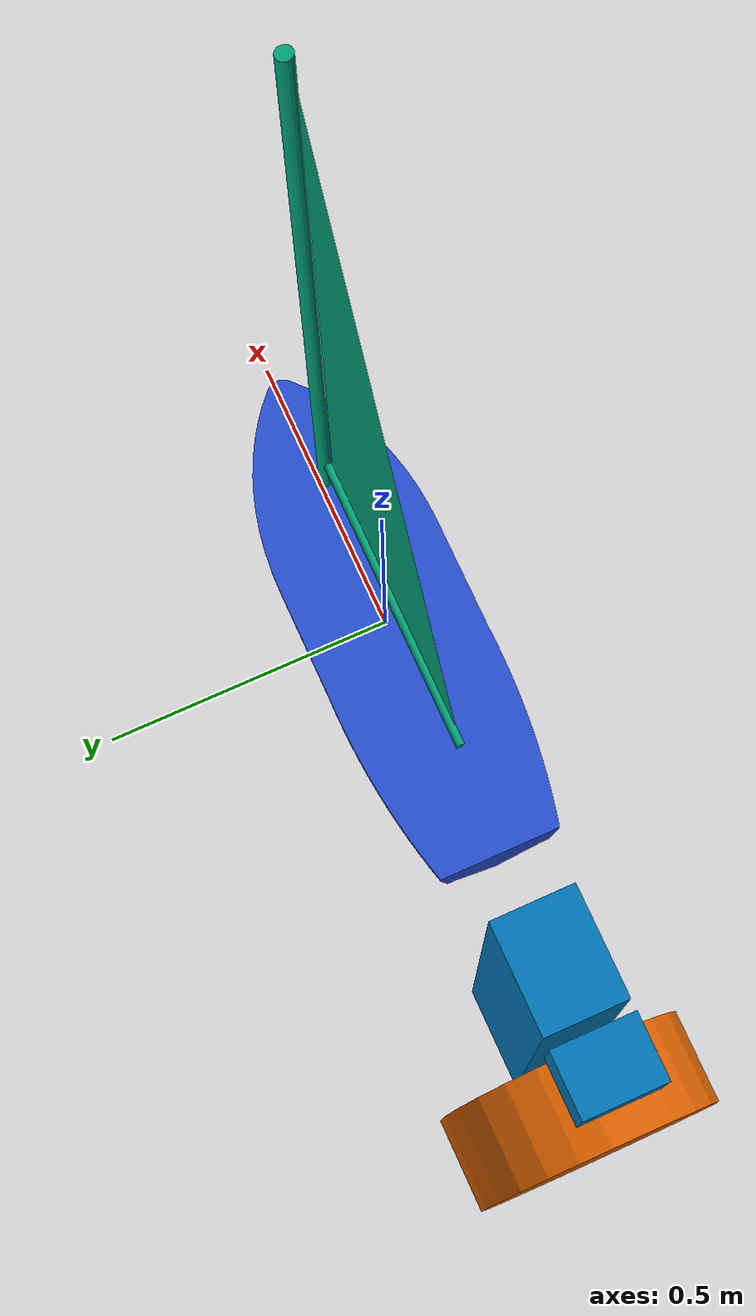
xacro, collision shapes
<?xml version="1.0"?>

<robot name="sailboat" xmlns:xacro="http://www.ros.org/wiki/xacro">

    <xacro:arg name="thruster_namespace" default="thrusters/"/>

    <xacro:property name="PI" value="3.1415926535897931"/>
    <xacro:property name="disp" value="0.0"/>
    <xacro:property name="thruster_namespace" value="$(arg thruster_namespace)" scope="global" />

    <!-- HULL DESCRIPTION -->
    <link name="base_link">
        <visual>
          <origin rpy="0 0 0" xyz="0 0 ${disp}"/>
          <geometry>
            <mesh filename="package://sailboat_description/mesh/pt90.stl"/>
          </geometry>
          <material name="blue"/>
        </visual>

        <collision>
          <origin rpy="0 0 ${disp}"/>
          <geometry>
            <mesh filename="package://sailboat_description/mesh/pt90.stl"/>
          </geometry>
        </collision>

        <inertial>
          <origin rpy="0 0 0" xyz="0 0 0.0"/>
          <mass value="50.0"/>
          <inertia ixx="0.3" ixy="0.0" ixz="0.0" iyy="3.5" iyz="0.0" izz="3.6"/>
        </inertial>
    </link>

    <!-- RUDDER DESCRIPTION -->
    <link name="rudder">
            <inertial>
                <mass value="1.0" />
                <inertia
                  ixx="0.0"
                  ixy="0.0"
                  iyy="0.0"
                  ixz="0.0"
                  iyz="0.0"
                  izz="0.0"/>
            </inertial>

            <collision name="collision">
                <geometry>
                  <mesh filename="package://sailboat_description/mesh/rudder.stl"/>
                </geometry>
                <origin rpy="0 0 0" xyz="0.0 0 0"/>
            </collision>

            <visual name="visual">
                <geometry>
                  <mesh filename="package://sailboat_description/mesh/rudder.stl"/>
                </geometry>
                <origin rpy="0 0 0" xyz="0.0 0 0"/>
            </visual>
        </link>

        <joint name="rudder_joint" type="revolute">
            <parent link="base_link"/>
            <child link="rudder"/>
            <origin rpy="0 0 0" xyz="-0.4 0 ${disp}"/>
            <dynamics damping="1.0"/>
            <axis xyz="0 0 1"/>
            <limit effort="50" velocity="5" lower="-${PI/3}" upper="${PI/3}" />
        </joint>

    <!-- SAIL DESCRIPTION -->
    <link name="sail">
		<inertial>
			<mass value="2.0" />
			<inertia
			  ixx="0.0"
			  ixy="0.0"
			  iyy="0.0"
			  ixz="0.0"
			  iyz="0.0"
			  izz="0.0"/>
		</inertial>

	    <collision name="collision">
            <geometry>
              <mesh filename="package://sailboat_description/mesh/sail.dae"/>
            </geometry>
            <origin rpy="0 0 0" xyz="0.0 0 0.0"/>
	    </collision>

	    <visual name="visual">
          <geometry>
            <mesh filename="package://sailboat_description/mesh/sail.dae"/>
          </geometry>
            <origin rpy="0 0 0" xyz="0.0 0 0.0"/>
	    </visual>

    </link>

    <joint name="sail_joint" type="revolute">
        <parent link="base_link"/>
        <child link="sail"/>
        <origin rpy="0 0 0" xyz="0.25 0 ${disp}"/>
        <dynamics damping="1.0"/>
        <axis xyz="0 0 1"/>
        <limit effort="30" velocity="5" lower="-${PI/2}" upper="${PI/2}" />
    </joint>

<!-- KEEL DESCRIPTION -->
    <link name="keel">
        <inertial>
            <mass value="10.0" xyz="0 0 ${disp}" />
            <inertia
              ixx="0.05"
              ixy="0.0"
              iyy="0.05"
              ixz="0.0"
              iyz="0.0"
              izz="0.005"/>
        </inertial>

        <collision name="collision">
            <geometry>
              <mesh filename="package://sailboat_description/mesh/keel.stl"/>
            </geometry>
            <origin rpy="0 0 0" xyz="0 0 0"/>
        </collision>

        <visual name="visual">
            <geometry>
              <mesh filename="package://sailboat_description/mesh/keel.stl"/>
            </geometry>
            <origin rpy="0 0 0" xyz="0 0 0"/>
        </visual>
    </link>

     <joint name="keel_joint" type="revolute">
        <parent link="base_link"/>
        <child link="keel"/>
        <origin rpy="0 0 0" xyz="0 0 ${disp}"/>
        <axis xyz="0 0 1"/>
        <limit effort="50" velocity="0" lower="0" upper="0" />
 	</joint>

  <xacro:include filename="$(find wamv_description)/urdf/thrusters/engine.xacro" />
  <xacro:engine prefix="center" position="-0.5 0 ${disp}" />

  <gazebo>

    <plugin name="gazebo_ros_control" filename="libgazebo_ros_control.so">
      <robotNamespace>/sailboat</robotNamespace>
    </plugin>

    <plugin name="rudder" filename="libsailboat_gazebo.so">
        <a0>0</a0>
        <cla>1.8</cla>
        <cda>0.3</cda>
        <alpha_stall>0.785</alpha_stall>
        <cla_stall>-0.85</cla_stall>
        <cda_stall>-0.3233984055</cda_stall>

        <cp>0.0 0 0.0</cp>
        <area>0.5</area>
        <air_density>1000</air_density>

        <forward>1 0 0</forward>
        <upward>0 1 0</upward>
        <link_name>rudder</link_name>
        <verbose>0</verbose>
    </plugin>

    <plugin name="keel" filename="libsailboat_gazebo.so">
        <a0>0</a0>
        <cla>1.0</cla>
        <cda>0.5</cda>
        <alpha_stall>0.785</alpha_stall>
        <cla_stall>-10.0</cla_stall>
        <cda_stall>-5.0</cda_stall>

        <cp>0.0 0 0.0</cp>
        <area>1.0</area>
        <air_density>1000</air_density>

        <forward>1 0 0</forward>
        <upward>0 1 0</upward>
        <link_name>keel</link_name>
        <verbose>1</verbose>
    </plugin>

  <plugin name="wamv_gazebo_thrust" filename="libusv_gazebo_thrust_plugin.so">
    <cmdTimeout>1.0</cmdTimeout>
    <robotNamespace>sailboat</robotNamespace>
    <xacro:include filename="$(find wamv_gazebo)/urdf/thruster_layouts/wamv_gazebo_thruster_config.xacro" />
    <xacro:wamv_gazebo_thruster_config name="center" />
  </plugin>

  </gazebo>

  <transmission name="sail_trans">
    <type>transmission_interface/SimpleTransmission</type>
    <actuator name="sail_act">
      <mechanicalReduction>1</mechanicalReduction>
    </actuator>
    <joint name="sail_joint">
      <hardwareInterface>hardware_interface/PositionJointInterface</hardwareInterface>
    </joint>
  </transmission>

  <transmission name="rudder_trans">
    <type>transmission_interface/SimpleTransmission</type>
    <actuator name="rudder_act">
      <mechanicalReduction>1</mechanicalReduction>
    </actuator>
    <joint name="rudder_joint">
      <hardwareInterface>hardware_interface/PositionJointInterface</hardwareInterface>
    </joint>
  </transmission>

</robot>

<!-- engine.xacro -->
<robot xmlns:xacro="http://ros.org/wiki/xacro" name="wam-v-two-engines">
  <!-- Macro for inserting an engine with its propeller. -->
  <xacro:macro name="engine" params="prefix position:='0 0 0' orientation:='0 0 0'">
    <link name="${prefix}_engine_link">
      <visual>
        <geometry>
          <mesh filename="package://wamv_description/models/engine/mesh/engine.dae"/>
        </geometry>
      </visual>
      <collision name="${prefix}_engine_vertical_axis_collision">
        <origin xyz="-0.16 0 -0.24" rpy="0 0 0" />
        <geometry>
          <box size="0.2 0.15 0.83" />
        </geometry>
      </collision>
      <collision name="${prefix}_engine_rear_end_collision">
        <origin xyz="-0.34 0 0.12" rpy="0 0 0" />
        <geometry>
          <box size="0.12 0.15 0.12" />
        </geometry>
      </collision>
      <inertial>
        <mass value="15"/>
        <inertia ixx="0.889245" ixy="0.0" ixz="0.0" iyy="0.911125" iyz="0.0" izz="0.078125"/>
      </inertial>
    </link>

    <link name="${prefix}_propeller_link">
      <visual>
        <geometry>
          <mesh filename="package://wamv_description/models/propeller/mesh/propeller.dae"/>
        </geometry>
      </visual>
      <collision name="${prefix}_propeller_collision">
        <origin xyz="-0.08 0 0" rpy="0 1.57 0" />
        <geometry>
          <cylinder length="0.18" radius="0.24" />
        </geometry>
      </collision>
      <inertial>
        <mass value="0.5"/>
        <inertia ixx="0.008545" ixy="0.0" ixz="0.0" iyy="0.008545" iyz="0.0" izz="0.0144"/>
      </inertial>
    </link>

    <joint name="${prefix}_chasis_engine_joint" type="revolute">
      <axis xyz="0 0 1"/>
      <limit lower="${-pi}" upper="${pi}" effort="10" velocity="10"/>
      <origin xyz="${position}" rpy="${orientation}"/>
      <parent link="base_link"/>
      <child link="${prefix}_engine_link"/>
    </joint>

    <joint name="${prefix}_engine_propeller_joint" type="continuous">
      <axis rpy="0 0 0" xyz="1 0 0"/>
      <parent link="${prefix}_engine_link"/>
      <child link="${prefix}_propeller_link"/>
      <origin rpy="0 0 0" xyz="-0.278156 0 -0.509371"/>
      <limit effort="100" velocity="100" />
      <dynamics friction="0.05" damping="0.05" />
    </joint>
  </xacro:macro>
</robot>
